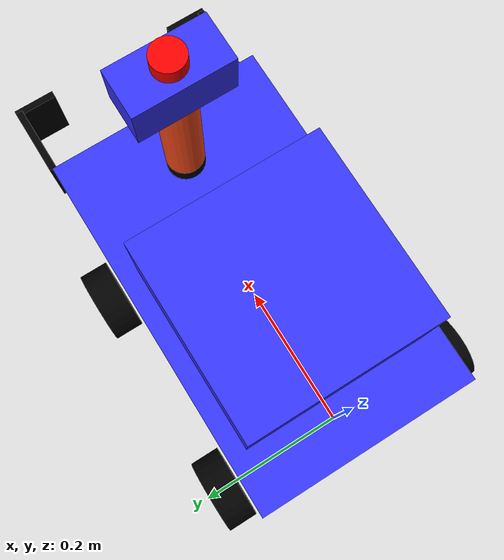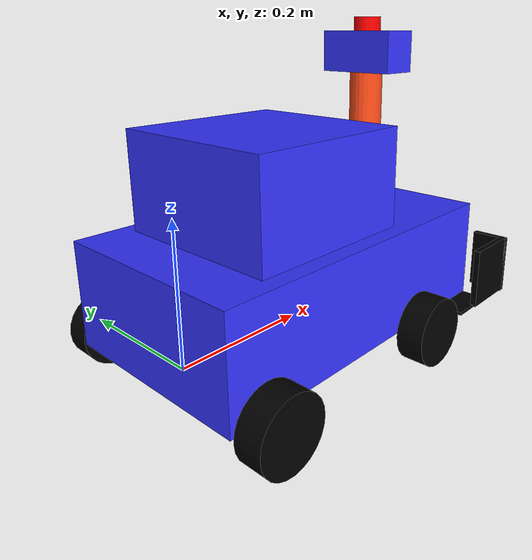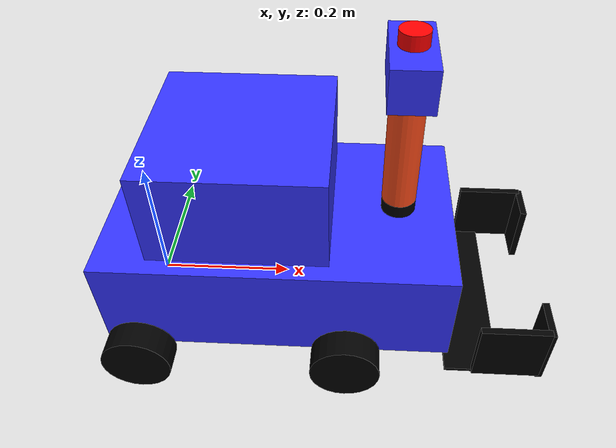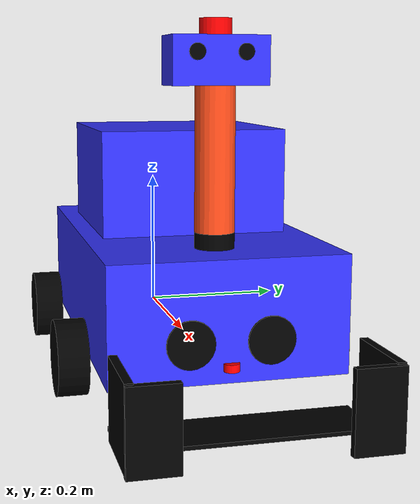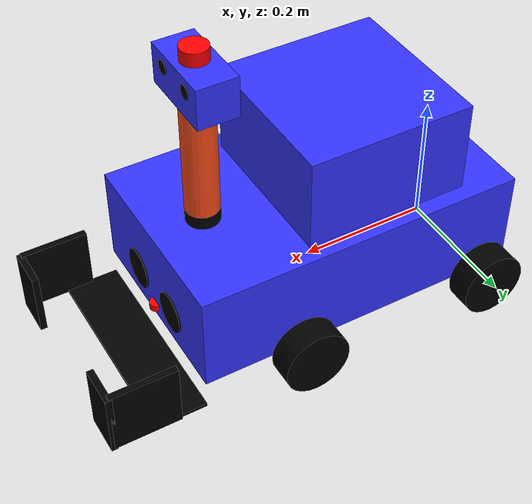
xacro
<?xml version="1.0"?>
<robot xmlns:xacro="http://www.ros.org/wiki/xacro"  name="robot">

    <xacro:include filename="robot_core.xacro" />
    <xacro:include filename="ros2_control.xacro" />
    <xacro:include filename="lidar.xacro" />
    <xacro:include filename="camera.xacro" />
    <xacro:include filename="depth_camera.xacro" />

</robot>

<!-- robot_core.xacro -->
<robot xmlns:xacro="http://www.ros.org/wiki/xacro" >

    <xacro:include filename="inertial_macros.xacro"/>

    <material name="white">
        <color rgba="1 1 1 1" />
    </material>

    <material name="orange">
        <color rgba="1 0.3 0.1 1"/>
    </material>

    <material name="blue">
        <color rgba="0.2 0.2 1 1"/>
    </material>

    <material name="black">
        <color rgba="0 0 0 1"/>
    </material>

    <material name="red">
        <color rgba="1 0 0 1"/>
    </material>

    <!-- BASE LINK -->

    <link name="base_link">

    </link>

    <!-- CHASSIS LINK -->

    <joint name="chassis_joint" type="fixed">
        <parent link="base_link"/>
        <child link="chassis"/>
        <origin xyz="0.05 0 0"/>
    </joint>

    <link name="chassis">
        <visual>
            <origin xyz="0.15 0 0.075"/>
            <geometry>
                <box size="0.5 0.3 0.15"/>
            </geometry>
            <material name="blue"/>
        </visual>
        <collision>
            <origin xyz="0.15 0 0.075"/>
            <geometry>
                <box size="0.5 0.3 0.15"/>
            </geometry>
        </collision>
        <xacro:inertial_box mass="8.5" x="0.5" y="0.3" z="0.15">
            <origin xyz="0.15 0 0.075" rpy="0 0 0"/>
        </xacro:inertial_box>
    </link>

    <gazebo reference="chassis">
        <material>Gazebo/Blue</material>
    </gazebo>

    <joint name="face_joint" type="fixed">
        <parent link="box"/>
        <child link="face_link"/>
        <origin xyz="0.03 0 0.01" rpy="0 0 0"/>
    </joint>

    <link name="face_link">
        <visual>
            <origin xyz="0 0.03 0" rpy="0 ${pi/2} 0"/>
            <geometry>
                <cylinder radius="0.01" length="0.002"/>
            </geometry>
            <material name="black"/>
        </visual>

        <visual>
            <origin xyz="0 -0.03 0" rpy="0 ${pi/2} 0"/>
            <geometry>
                <cylinder radius="0.01" length="0.002"/>
            </geometry>
            <material name="black"/>
        </visual>
    </link>
    <gazebo reference="face_link">
        <material>Gazebo/Black</material>
    </gazebo>

    <!-- LEFT WHEEL LINK -->

    <joint name="left_wheel_joint" type="continuous">
        <parent link="base_link"/>
        <child link="left_wheel"/>
        <origin xyz="0 0.175 0" rpy="-${pi/2} 0 0" />
        <axis xyz="0 0 1"/>
    </joint>

    <link name="left_wheel">
        <visual>
            <geometry>
                <cylinder radius="0.05" length="0.04"/>
            </geometry>
            <material name="black"/>
        </visual>
        <collision>
            <geometry>
                <cylinder radius="0.05" length="0.04"/>
            </geometry>
        </collision>
        <xacro:inertial_cylinder mass="1.1" length="0.04" radius="0.05">
            <origin xyz="0 0 0" rpy="0 0 0"/>
        </xacro:inertial_cylinder>
    </link>
    <gazebo reference="left_wheel">
        <material>Gazebo/Black</material>
    </gazebo>

    <!-- RIGHT WHEEL LINK -->

    <joint name="right_wheel_joint" type="continuous">
        <parent link="base_link"/>
        <child link="right_wheel"/>
        <origin xyz="0 -0.175 0" rpy="${pi/2} 0 0" />
        <axis xyz="0 0 -1"/>
    </joint>

    <link name="right_wheel">
        <visual>
            <geometry>
                <cylinder radius="0.05" length="0.04"/>
            </geometry>
            <material name="black"/>
        </visual>
        <collision>
            <geometry>
                <cylinder radius="0.05" length="0.04"/>
            </geometry>
        </collision>
        <xacro:inertial_cylinder mass="1.1" length="0.04" radius="0.08">
            <origin xyz="0 0 0" rpy="0 0 0"/>
        </xacro:inertial_cylinder>
    </link>
    <gazebo reference="Right_wheel">
        <material>Gazebo/Black</material>
    </gazebo>

    <!-- Dummy RIGHT WHEEL LINK -->

    <joint name="dum_right_wheel_joint" type="fixed">
        <parent link="base_link"/>
        <child link="dum_right_wheel"/>
        <origin xyz="0.3 -0.175 0" rpy="${pi/2} 0 0" />
        <axis xyz="0 0 -1"/>
    </joint>

    <link name="dum_right_wheel">
        <visual>
            <geometry>
                <cylinder radius="0.05" length="0.04"/>
            </geometry>
            <material name="black"/>
        </visual>
        <collision>
            <geometry>
                <cylinder radius="0.05" length="0.04"/>
            </geometry>
        </collision>
        <xacro:inertial_cylinder mass="1.1" length="0.04" radius="0.05">
            <origin xyz="0 0 0" rpy="0 0 0"/>
        </xacro:inertial_cylinder>
    </link>
    <gazebo reference="dum_right_wheel">
        <material>Gazebo/Black</material>
        <mu1 value="0.001"/>
        <mu2 value="0.001"/>
    </gazebo>

    <!-- Dummy LEFT WHEEL LINK -->

    <joint name="dum_left_wheel_joint" type="fixed">
        <parent link="base_link"/>
        <child link="dum_left_wheel"/>
        <origin xyz="0.3 0.175 0" rpy="${pi/2} 0 0" />
        <axis xyz="0 0 1"/>
    </joint>

    <link name="dum_left_wheel">
        <visual>
            <geometry>
                <cylinder radius="0.05" length="0.04"/>
            </geometry>
            <material name="black"/>
        </visual>
        <collision>
            <geometry>
                <cylinder radius="0.05" length="0.04"/>
            </geometry>
        </collision>
        <xacro:inertial_cylinder mass="1.1" length="0.04" radius="0.05">
            <origin xyz="0 0 0" rpy="0 0 0"/>
        </xacro:inertial_cylinder>
    </link>
    <gazebo reference="dum_left_wheel">
        <material>Gazebo/Black</material>
        <mu1 value="0.001"/>
        <mu2 value="0.001"/>
    </gazebo>

    <!-- back LINK -->

    <joint name="back_joint" type="fixed">
        <parent link="chassis"/>
        <child link="back"/>
        <origin xyz="0.1 0 0.22" rpy="0 0 0" />
        <axis xyz="0 0 1"/>
    </joint>

    <link name="back">
        <visual>
            <origin xyz="0 0 0"/>
            <geometry>
                <box size="0.25 0.25 0.14"/>
            </geometry>
            <material name="blue"/>
        </visual>
        <collision>
            <origin xyz="0 0 0"/>
            <geometry>
                <box size="0.25 0.25 0.14"/>
            </geometry>
        </collision>
        <xacro:inertial_box mass="2.1" x="0.25" y="0.25" z="0.14">
            <origin xyz="0 0 0" rpy="0 0 0"/>
        </xacro:inertial_box>
    </link>
    <gazebo reference="back">
        <material>Gazebo/Blue</material>
    </gazebo>

   <!-- support LINK -->

    <joint name="support_joint" type="fixed">
        <parent link="chassis"/>
        <child link="support"/>
        <origin xyz="0.32 0 0.16" rpy="0 0 0" />
    </joint>

    <link name="support">
        <visual>
            <geometry>
                <cylinder radius="0.025" length="0.02"/>
            </geometry>
            <material name="black"/>
        </visual>
        <collision>
            <geometry>
                <cylinder radius="0.025" length="0.02"/>
            </geometry>
        </collision>
        <xacro:inertial_cylinder mass="0.1" length="0.02" radius="0.025">
            <origin xyz="0 0 0" rpy="0 0 0"/>
        </xacro:inertial_cylinder>
    </link>
    <gazebo reference="support">
        <material>Gazebo/Black</material>
    </gazebo>

    <!-- box LINK -->

    <joint name="box_joint" type="fixed">
        <parent link="support1"/>
        <child link="box"/>
        <origin xyz="0 0 0.12" rpy="0 0 0" />
        <axis xyz="0 0 1"/>
    </joint>

    <link name="box">
        <visual>
            <origin xyz="0 0 0"/>
            <geometry>
                <box size="0.06 0.12 0.06"/>
            </geometry>
            <material name="blue"/>
        </visual>
        <collision>
            <origin xyz="0 0 0"/>
            <geometry>
                <box size="0.06 0.12 0.06"/>
            </geometry>
        </collision>
        <xacro:inertial_box mass="0.1" x="0.06" y="0.12" z="0.06">
            <origin xyz="0 0 0" rpy="0 0 0"/>
        </xacro:inertial_box>
    </link>
    <gazebo reference="box">
        <material>Gazebo/Blue</material>
    </gazebo>

    <!-- support1 LINK -->

    <joint name="support1_joint" type="fixed">
        <parent link="support"/>
        <child link="support1"/>
        <origin xyz="0 0 0.10" rpy="0 0 0" />
    </joint>

    <link name="support1">
        <visual>
            <geometry>
                <cylinder radius="0.025" length="0.18"/>
            </geometry>
            <material name="orange"/>
        </visual>
        <collision>
            <geometry>
                <cylinder radius="0.025" length="0.18"/>
            </geometry>
        </collision>
        <xacro:inertial_cylinder mass="0.1" length="0.18" radius="0.025">
            <origin xyz="0 0 0" rpy="0 0 0"/>
        </xacro:inertial_cylinder>
    </link>
    <gazebo reference="support1">
        <material>Gazebo/Orange</material>
    </gazebo>

    <!-- lift Link -->

    <joint name="lift_joint" type="prismatic">
        <parent link="chassis"/>
        <child link="lift"/>
        <origin xyz="0.29 0 -0.0449" rpy="0 0 0" />
        <limit lower="0.0" upper="0.11" velocity="100" effort="100"/>
        <axis xyz="0 0 1"/>
    </joint>

    <link name="lift">
        <visual>
            <origin xyz="0.15 0 0.002"/>
            <geometry>
                <box size="0.08 0.3 0.005"/>
            </geometry>
            <material name="black"/>
        </visual>
        <collision>
            <origin xyz="0.15 0 0.005"/>
            <geometry>
                <box size="0.08 0.3 0.00001"/>
            </geometry>
        </collision>
        <xacro:inertial_box mass="0.1" x="0.08" y="0.3" z="0.005">
            <origin xyz="0.15 0 0.002" rpy="0 0 0"/>
        </xacro:inertial_box>
    </link>
    <gazebo reference="lift">
        <material>Gazebo/Black</material>
        <mu1 value="0.00001"/>
        <mu2 value="0.00001"/>
    </gazebo>

    <!-- forkone Link -->

    <joint name="forkone_joint" type="prismatic">
        <parent link="lift"/>
        <child link="forkone"/>
        <origin xyz="0.05 -0.15 0.05" rpy="0.0 0.0 0.0" />
        <limit lower="0" upper="0.085" velocity="10" effort="1000.0"/>
        <axis xyz="0 1 0"/>
    </joint>

    <link name="forkone">
        <visual>
            <origin xyz="0.15 0 0.002"/>
            <geometry>
                <box size="0.1 0.01 0.1"/>
            </geometry>
            <material name="black"/>
        </visual>
        <collision>
            <origin xyz="0.15 0 0.002"/>
            <geometry>
                <box size="0.1 0.01 0.1"/>
            </geometry>
        </collision>
        <xacro:inertial_box mass="0.1" x="0.1" y="0.01" z="0.1">
            <origin xyz="0.15 0 0.002" rpy="0 0 0"/>
        </xacro:inertial_box>
    </link>
    <gazebo reference="forkone">
        <material>Gazebo/Black</material>
        <mu1 value="0.10001"/>
        <mu2 value="0.10001"/>
    </gazebo>

        <!-- forktwo Link -->

    <joint name="forktwo_joint" type="prismatic">
        <parent link="lift"/>
        <child link="forktwo"/>
        <origin xyz="0.05 0.15 0.05" rpy="0.0 0.0 0.0"/>
        <limit lower="0" upper="0.085" velocity="10" effort="1000.0"/>
        <axis xyz="0 -1 0"/>
    </joint>

    <link name="forktwo">
        <visual>
            <origin xyz="0.15 0 0.002"/>
            <geometry>
                <box size="0.1 0.01 0.1"/>
            </geometry>
            <material name="black"/>
        </visual>
        <collision>
            <origin xyz="0.15 0 0.002"/>
            <geometry>
                <box size="0.1 0.01 0.1"/>
            </geometry>
        </collision>
        <xacro:inertial_box mass="0.1" x="0.1" y="0.01" z="0.1">
            <origin xyz="0.15 0 0.002" rpy="0 0 0"/>
        </xacro:inertial_box>
    </link>
    <gazebo reference="forktwo">
        <material>Gazebo/Black</material>
        <mu1 value="0.10001"/>
        <mu2 value="0.10001"/>
    </gazebo>

    <!-- cap Link -->

    <joint name="cap_joint" type="fixed">
        <parent link="forktwo"/>
        <child link="cap"/>
        <origin xyz="0.2 -0.025 0.0" rpy="0.0 0.0 0.0"/>
    </joint>

    <link name="cap">
        <visual>
            <origin xyz="0.0 0.0 0.0"/>
            <geometry>
                <box size="0.01 0.06 0.1"/>
            </geometry>
            <material name="black"/>
        </visual>
        <collision>
            <origin xyz="0.0 0.0 0.0"/>
            <geometry>
                <box size="0.01 0.06 0.1"/>
            </geometry>
        </collision>
        <xacro:inertial_box mass="0.1" x="0.01" y="0.05" z="0.1">
            <origin xyz="0.0 0.0 0.0" rpy="0 0 0"/>
        </xacro:inertial_box>
    </link>
    <gazebo reference="cap">
        <material>Gazebo/Black</material>
    </gazebo>

    <!-- cap1 Link -->

    <joint name="cap1_joint" type="fixed">
        <parent link="forkone"/>
        <child link="cap1"/>
        <origin xyz="0.2 0.025 0.0" rpy="0.0 0.0 0.0"/>
    </joint>

    <link name="cap1">
        <visual>
            <origin xyz="0.0 0.0 0.0"/>
            <geometry>
                <box size="0.01 0.06 0.1"/>
            </geometry>
            <material name="black"/>
        </visual>
        <collision>
            <origin xyz="0.0 0.0 0.0"/>
            <geometry>
                <box size="0.01 0.06 0.1"/>
            </geometry>
        </collision>
        <xacro:inertial_box mass="0.1" x="0.01" y="0.06" z="0.1">
            <origin xyz="0.0 0.0 0.0" rpy="0 0 0"/>
        </xacro:inertial_box>
    </link>
    <gazebo reference="cap1">
        <material>Gazebo/Black</material>
    </gazebo>

    <joint name="vc1_joint" type="prismatic">
        <parent link="chassis"/>
        <child link="vc1"/>
        <origin xyz="0.395 -0.05 0.05" rpy="0 ${pi/2} 0"/>
        <limit lower="0" upper="0" velocity="10" effort="100.0"/>
        <axis xyz="0 1 0"/>
    </joint>

    <link name="vc1">
        <visual>
            <geometry>
                <cylinder radius="0.03" length="0.015"/>
            </geometry>
            <material name="black"/>
        </visual>
        <collision>
            <geometry>
                <cylinder radius="0.03" length="0.015"/>
            </geometry>
        </collision>
        <xacro:inertial_cylinder mass="0.001" length="0.015" radius="0.03">
            <origin xyz="0 0 0" rpy="0 0 0"/>
        </xacro:inertial_cylinder>
    </link>
    <gazebo reference="vc1">
        <material>Gazebo/Black</material>
    </gazebo>

    <joint name="vc2_joint" type="fixed">
        <parent link="chassis"/>
        <child link="vc2"/>
        <origin xyz="0.395 0.05 0.05" rpy="0 ${pi/2} 0"/>
    </joint>

    <link name="vc2">
        <visual>
            <geometry>
                <cylinder radius="0.03" length="0.015"/>
            </geometry>
            <material name="black"/>
        </visual>
        <collision>
            <geometry>
                <cylinder radius="0.03" length="0.015"/>
            </geometry>
        </collision>
        <xacro:inertial_cylinder mass="0.001" length="0.015" radius="0.03">
            <origin xyz="0 0 0" rpy="0 0 0"/>
        </xacro:inertial_cylinder>
    </link>
    <gazebo reference="vc2">
        <material>Gazebo/Black</material>
    </gazebo>

    <gazebo>

    <plugin name="gazebo_ros_joint_pose_trajectory"
          filename="libgazebo_ros_joint_pose_trajectory.so">
        <ros>
          <namespace>/vision</namespace>
          <remapping>set_joint_trajectory:=set_trajectory_demo</remapping>
        </ros>
        <update_rate>2</update_rate>
    </plugin>

    </gazebo>

    <gazebo>
    <plugin name='vacuum_gripper' filename='libgazebo_ros_vacuum_gripper.so'>

        <ros>
          <namespace>/demo</namespace>
          <remapping>switch:=switch_demo</remapping>
          <remapping>grasping:=grasping_demo</remapping>
        </ros>

        <link_name>vc1</link_name>

        <max_distance>0.8</max_distance>

        <fixed>base_link</fixed>

      </plugin>

    </gazebo>

     <gazebo>
    <plugin name='vacuum_gripper' filename='libgazebo_ros_vacuum_gripper.so'>

        <ros>
          <namespace>/demo1</namespace>
          <remapping>switch:=switch_demo</remapping>
          <remapping>grasping:=grasping_demo</remapping>
        </ros>

        <link_name>vc2</link_name>

        <max_distance>0.8</max_distance>

        <fixed>base_link</fixed>

      </plugin>

    </gazebo>

    <gazebo>
    <plugin name='vacuum_gripper' filename='libgazebo_ros_vacuum_gripper.so'>

        <ros>
          <namespace>/fork</namespace>
          <remapping>switch:=switch_demo</remapping>
          <remapping>grasping:=grasping_demo</remapping>
        </ros>

        <link_name>forkone</link_name>

        <max_distance>0.1</max_distance>

        <fixed>base_link</fixed>

      </plugin>

    </gazebo>

</robot>

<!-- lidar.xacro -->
<robot xmlns:xacro="http://www.ros.org/wiki/xacro" >

    <joint name="laser_joint" type="fixed">
        <parent link="box"/>
        <child link="laser_frame"/>
        <origin xyz="0 0 0.04" rpy="0 0 0"/>
    </joint>

    <link name="laser_frame">
        <visual>
            <geometry>
                <cylinder radius="0.02" length="0.02"/>
            </geometry>
            <material name="red"/>
        </visual>
        <collision>
            <geometry>
                <cylinder radius="0.02" length="0.02"/>
            </geometry>
        </collision>
        <xacro:inertial_cylinder mass="0.01" length="0.02" radius="0.02">
            <origin xyz="0 0 0" rpy="0 0 0"/>
        </xacro:inertial_cylinder>
    </link>

    <gazebo reference="laser_frame">
        <material>Gazebo/Red</material>
    </gazebo>

    <joint name="laser_jointnew" type="fixed">
        <parent link="chassis"/>
        <child link="laser_framenew"/>
        <origin xyz="0.4 0 0.02" rpy="0 0  0"/>
    </joint>

    <link name="laser_framenew">
        <visual>
            <geometry>
                <cylinder radius="0.01" length="0.01"/>
            </geometry>
            <material name="red"/>
        </visual>
        <collision>
            <geometry>
                <cylinder radius="0.01" length="0.01"/>
            </geometry>
        </collision>
        <xacro:inertial_cylinder mass="0.001" length="0.01" radius="0.01">
            <origin xyz="0 0 0" rpy="0 0 0"/>
        </xacro:inertial_cylinder>
    </link>

    <gazebo reference="laser_framenew">
        <material>Gazebo/Red</material>

        <sensor name="laser" type="ray">
            <pose> 0 0 0 0 0 0 </pose>
            <visualize>true</visualize>
            <update_rate>4</update_rate>
            <ray>
                <scan>
                    <horizontal>
                        <samples>10</samples>
                        <min_angle>0</min_angle>
                        <max_angle>0.1</max_angle>
                    </horizontal>
                </scan>
                <range>
                    <min>0.15</min>
                    <max>12</max>
                </range>
            </ray>
            <plugin name="laser_controller" filename="libgazebo_ros_ray_sensor.so">
                <ros>
                    <argument>~/out:=scan</argument>
                </ros>
                <output_type>sensor_msgs/LaserScan</output_type>
                <frame_name>laser_frame</frame_name>
            </plugin>
        </sensor>
    </gazebo>

</robot>

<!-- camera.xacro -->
<robot xmlns:xacro="http://www.ros.org/wiki/xacro" >

    <joint name="cam" type="fixed">
        <parent link="laser_frame"/>
        <child link="camera_link"/>
        <origin xyz="0 0 0.01" rpy="0 0 0"/>
    </joint>

    <link name="camera_link">
        <visual>
            <geometry>
                <box size="0.00001 0.00001 0.00001"/>
            </geometry>
            <material name="red"/>
        </visual>
    </link>

    <joint name="camera_optical_joint" type="fixed">
        <parent link="camera_link"/>
        <child link="camera_link_optical"/>
        <origin xyz="0 0 0" rpy="${-pi/2} 0 ${-pi/2}"/>
    </joint>

    <link name="camera_link_optical"></link>

    <gazebo reference="camera_link">
        <material>Gazebo/Red</material>

        <sensor type="multicamera" name="camera1">
          <pose>0 -0.2 0 0 0 0</pose>
          <update_rate>60</update_rate>
          <visualize>true</visualize>
          <camera name="left">
            <horizontal_fov>1.3962634</horizontal_fov>
            <image>
              <width>640</width>
              <height>480</height>
              <format>R8G8B8</format>
            </image>
            <clip>
              <near>0.02</near>
              <far>300</far>
            </clip>
            <noise>
              <type>gaussian</type>
              <mean>0.0</mean>
              <stddev>0.007</stddev>
            </noise>
          </camera>
          <camera name="right">
            <pose>0 0.4 0 0 0 0</pose>
            <horizontal_fov>0.7</horizontal_fov>
            <image>
              <width>320</width>
              <height>480</height>
              <format>R8G8B8</format>
            </image>
            <clip>
              <near>0.02</near>
              <far>300</far>
            </clip>
            <noise>
              <type>gaussian</type>
              <mean>0.0</mean>
              <stddev>0.007</stddev>
            </noise>
          </camera>
          <plugin name="camera_controller" filename="libgazebo_ros_camera.so">
            <ros>
              <namespace>demo_cam</namespace>
              <!-- topics need to be prefixed with camera_name for remapping -->
              <remapping>mycamera/left/image_raw:=mycamera/left/image_demo</remapping>
              <remapping>mycamera/right/image_raw:=mycamera/right/image_demo</remapping>
              <remapping>mycamera/left/camera_info:=mycamera/left/camera_info_demo</remapping>
              <remapping>mycamera/right/camera_info:=mycamera/right/camera_info_demo</remapping>
            </ros>

            <camera_name>mycamera</camera_name>

          </plugin>
        </sensor>
    </gazebo>

</robot>

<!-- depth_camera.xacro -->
<robot xmlns:xacro="http://www.ros.org/wiki/xacro" >

    <joint name="camera_optical_joint1" type="fixed">
        <parent link="camera_link"/>
        <child link="camera_link_optical1"/>
        <origin xyz="0 0 0" rpy="${-pi/2} 0 ${-pi/2}"/>
    </joint>

    <link name="camera_link_optical1"></link>

    <gazebo reference="camera_link">
        <material>Gazebo/Red</material>

        <sensor name="camera" type="depth">
            <pose> 0 0 0 0 0 0 </pose>
            <visualize>true</visualize>
            <update_rate>10</update_rate>
            <camera>
                <horizontal_fov>1.089</horizontal_fov>
                <image>
                    <format>B8G8R8</format>
                    <width>640</width>
                    <height>480</height>
                </image>
                <clip>
                    <near>0.05</near>
                    <far>8.0</far>
                </clip>
            </camera>
            <plugin name="camera_controller" filename="libgazebo_ros_camera.so">
                <frame_name>camera_link_optical</frame_name>
                <min_depth>0.1</min_depth>
                <max_depth>100.0</max_depth>
            </plugin>
        </sensor>
    </gazebo>

</robot>
